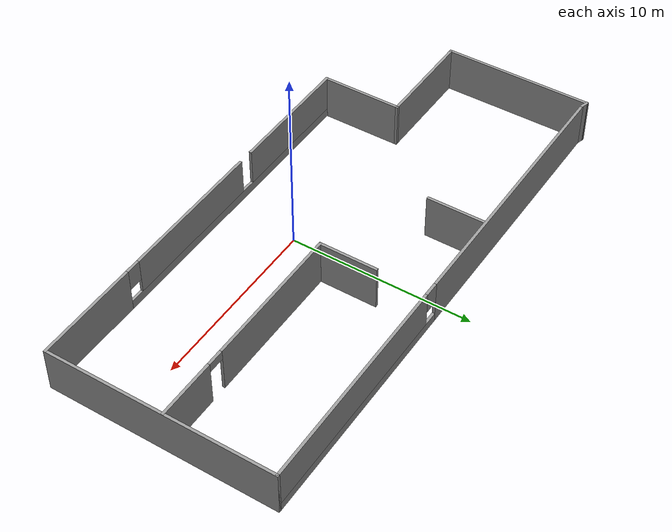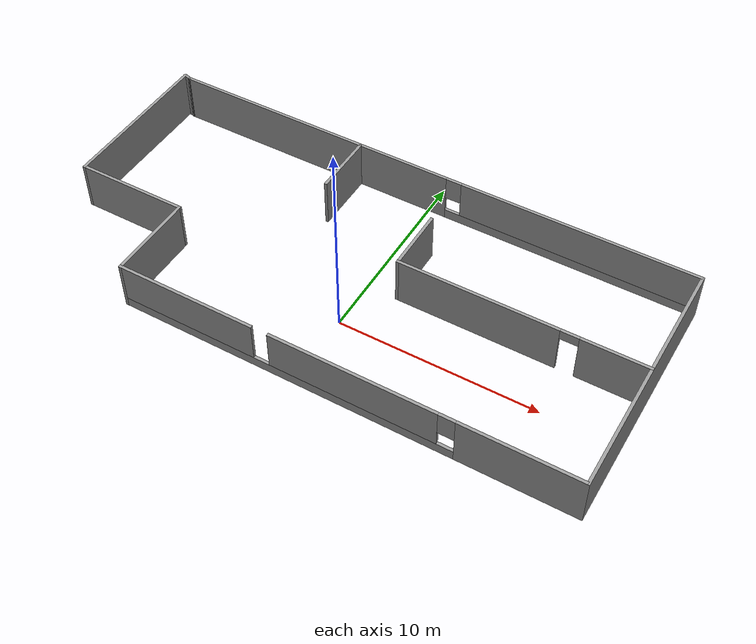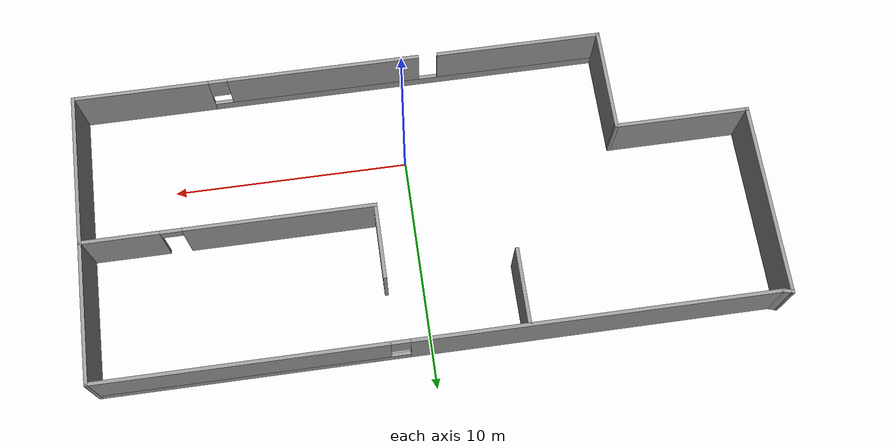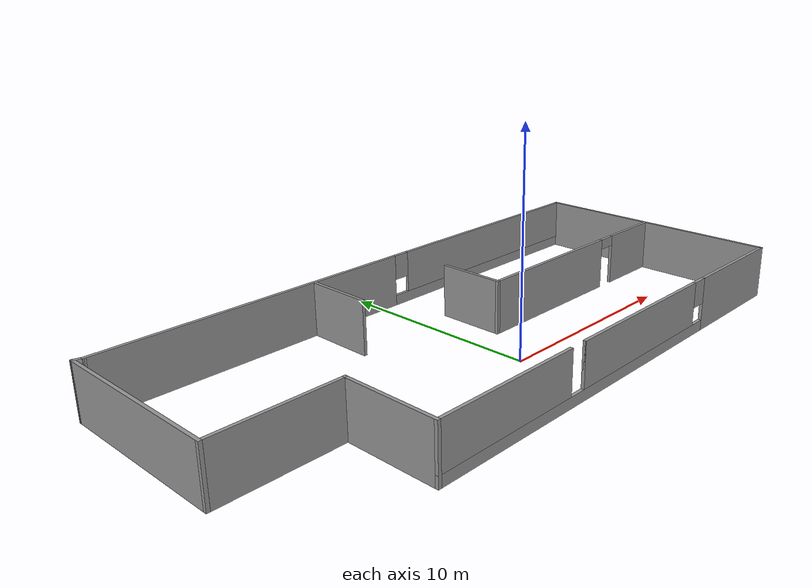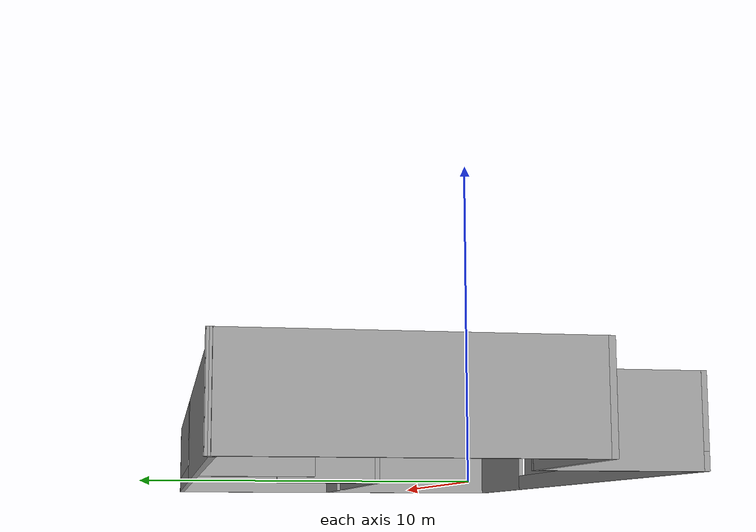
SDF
<?xml version='1.0'?>
<sdf version='1.7'>
  <model name='autolab_building'>
    <pose>-0.449201 2.35064 0 0 -0 0</pose>
    <link name='Wall_10'>
      <collision name='Wall_10_Collision'>
        <geometry>
          <box>
            <size>3.25 0.15 2.5</size>
          </box>
        </geometry>
        <pose>0 0 1.25 0 -0 0</pose>
      </collision>
      <visual name='Wall_10_Visual'>
        <pose>0 0 1.25 0 -0 0</pose>
        <geometry>
          <box>
            <size>3.25 0.15 2.5</size>
          </box>
        </geometry>
        <material>
          <script>
            <uri>file://media/materials/scripts/gazebo.material</uri>
            <name>Gazebo/Grey</name>
          </script>
          <ambient>1 1 1 1</ambient>
        </material>
        <meta>
          <layer>0</layer>
        </meta>
      </visual>
      <pose>-3.45797 4.50199 0 0 -0 1.5708</pose>
    </link>
    <link name='Wall_13'>
      <pose>8.04816 0.245706 0 0 -0 3.14159</pose>
      <visual name='Wall_13_Visual_0'>
        <pose>-4.46205 0 1.25 0 -0 0</pose>
        <geometry>
          <box>
            <size>3.3259 0.15 2.5</size>
          </box>
        </geometry>
        <material>
          <script>
            <uri>file://media/materials/scripts/gazebo.material</uri>
            <name>Gazebo/Grey</name>
          </script>
          <ambient>1 1 1 1</ambient>
        </material>
        <meta>
          <layer>0</layer>
        </meta>
      </visual>
      <collision name='Wall_13_Collision_0'>
        <geometry>
          <box>
            <size>3.3259 0.15 2.5</size>
          </box>
        </geometry>
        <pose>-4.46205 0 1.25 0 -0 0</pose>
      </collision>
      <visual name='Wall_13_Visual_1'>
        <pose>2.11295 0 1.25 0 -0 0</pose>
        <geometry>
          <box>
            <size>8.0241 0.15 2.5</size>
          </box>
        </geometry>
        <material>
          <script>
            <uri>file://media/materials/scripts/gazebo.material</uri>
            <name>Gazebo/Grey</name>
          </script>
          <ambient>1 1 1 1</ambient>
        </material>
        <meta>
          <layer>0</layer>
        </meta>
      </visual>
      <collision name='Wall_13_Collision_1'>
        <geometry>
          <box>
            <size>8.0241 0.15 2.5</size>
          </box>
        </geometry>
        <pose>2.11295 0 1.25 0 -0 0</pose>
      </collision>
      <visual name='Wall_13_Visual_2'>
        <pose>-2.3491 0 2.25 0 -0 0</pose>
        <geometry>
          <box>
            <size>0.9 0.15 0.5</size>
          </box>
        </geometry>
        <material>
          <script>
            <uri>file://media/materials/scripts/gazebo.material</uri>
            <name>Gazebo/Grey</name>
          </script>
          <ambient>1 1 1 1</ambient>
        </material>
        <meta>
          <layer>0</layer>
        </meta>
      </visual>
      <collision name='Wall_13_Collision_2'>
        <geometry>
          <box>
            <size>0.9 0.15 0.5</size>
          </box>
        </geometry>
        <pose>-2.3491 0 2.25 0 -0 0</pose>
      </collision>
    </link>
    <link name='Wall_14'>
      <collision name='Wall_14_Collision'>
        <geometry>
          <box>
            <size>3.25 0.15 2.5</size>
          </box>
        </geometry>
        <pose>0 0 1.25 0 -0 0</pose>
      </collision>
      <visual name='Wall_14_Visual'>
        <pose>0 0 1.25 0 -0 0</pose>
        <geometry>
          <box>
            <size>3.25 0.15 2.5</size>
          </box>
        </geometry>
        <material>
          <script>
            <uri>file://media/materials/scripts/gazebo.material</uri>
            <name>Gazebo/Grey</name>
          </script>
          <ambient>1 1 1 1</ambient>
        </material>
        <meta>
          <layer>0</layer>
        </meta>
      </visual>
      <pose>1.99816 1.79571 0 0 -0 1.5708</pose>
    </link>
    <link name='Wall_2'>
      <pose>0.183859 6.11614 0 0 -0 0</pose>
      <visual name='Wall_2_Visual_0'>
        <pose>-6.43029 0 1.25 0 -0 0</pose>
        <geometry>
          <box>
            <size>15.1394 0.15 2.5</size>
          </box>
        </geometry>
        <material>
          <script>
            <uri>file://media/materials/scripts/gazebo.material</uri>
            <name>Gazebo/Grey</name>
          </script>
          <ambient>1 1 1 1</ambient>
        </material>
        <meta>
          <layer>0</layer>
        </meta>
      </visual>
      <collision name='Wall_2_Collision_0'>
        <geometry>
          <box>
            <size>15.1394 0.15 2.5</size>
          </box>
        </geometry>
        <pose>-6.43029 0 1.25 0 -0 0</pose>
      </collision>
      <visual name='Wall_2_Visual_1'>
        <pose>7.56971 0 0.25 0 -0 0</pose>
        <geometry>
          <box>
            <size>12.8606 0.15 0.5</size>
          </box>
        </geometry>
        <material>
          <script>
            <uri>file://media/materials/scripts/gazebo.material</uri>
            <name>Gazebo/Grey</name>
          </script>
          <ambient>1 1 1 1</ambient>
        </material>
        <meta>
          <layer>0</layer>
        </meta>
      </visual>
      <collision name='Wall_2_Collision_1'>
        <geometry>
          <box>
            <size>12.8606 0.15 0.5</size>
          </box>
        </geometry>
        <pose>7.56971 0 0.25 0 -0 0</pose>
      </collision>
      <visual name='Wall_2_Visual_2'>
        <pose>7.96971 0 1.5 0 -0 0</pose>
        <geometry>
          <box>
            <size>12.0606 0.15 2</size>
          </box>
        </geometry>
        <material>
          <script>
            <uri>file://media/materials/scripts/gazebo.material</uri>
            <name>Gazebo/Grey</name>
          </script>
          <ambient>1 1 1 1</ambient>
        </material>
        <meta>
          <layer>0</layer>
        </meta>
      </visual>
      <collision name='Wall_2_Collision_2'>
        <geometry>
          <box>
            <size>12.0606 0.15 2</size>
          </box>
        </geometry>
        <pose>7.96971 0 1.5 0 -0 0</pose>
      </collision>
      <visual name='Wall_2_Visual_3'>
        <pose>1.53943 0 1.9 0 -0 0</pose>
        <geometry>
          <box>
            <size>0.8 0.15 1.2</size>
          </box>
        </geometry>
        <material>
          <script>
            <uri>file://media/materials/scripts/gazebo.material</uri>
            <name>Gazebo/Grey</name>
          </script>
          <ambient>1 1 1 1</ambient>
        </material>
        <meta>
          <layer>0</layer>
        </meta>
      </visual>
      <collision name='Wall_2_Collision_3'>
        <geometry>
          <box>
            <size>0.8 0.15 1.2</size>
          </box>
        </geometry>
        <pose>1.53943 0 1.9 0 -0 0</pose>
      </collision>
    </link>
    <link name='Wall_3'>
      <collision name='Wall_3_Collision'>
        <geometry>
          <box>
            <size>12.5 0.15 2.5</size>
          </box>
        </geometry>
        <pose>0 0 1.25 0 -0 0</pose>
      </collision>
      <visual name='Wall_3_Visual'>
        <pose>0 0 1.25 0 -0 0</pose>
        <geometry>
          <box>
            <size>12.5 0.15 2.5</size>
          </box>
        </geometry>
        <material>
          <script>
            <uri>file://media/materials/scripts/gazebo.material</uri>
            <name>Gazebo/Grey</name>
          </script>
          <ambient>1 1 1 1</ambient>
        </material>
        <meta>
          <layer>0</layer>
        </meta>
      </visual>
      <pose>14.1089 -0.058858 0 0 -0 -1.5708</pose>
    </link>
    <link name='Wall_4'>
      <pose>2.80886 -6.23386 0 0 -0 3.14159</pose>
      <visual name='Wall_4_Visual_0'>
        <pose>-8.46734 0 1.25 0 -0 0</pose>
        <geometry>
          <box>
            <size>5.81531 0.15 2.5</size>
          </box>
        </geometry>
        <material>
          <script>
            <uri>file://media/materials/scripts/gazebo.material</uri>
            <name>Gazebo/Grey</name>
          </script>
          <ambient>1 1 1 1</ambient>
        </material>
        <meta>
          <layer>0</layer>
        </meta>
      </visual>
      <collision name='Wall_4_Collision_0'>
        <geometry>
          <box>
            <size>5.81531 0.15 2.5</size>
          </box>
        </geometry>
        <pose>-8.46734 0 1.25 0 -0 0</pose>
      </collision>
      <visual name='Wall_4_Visual_1'>
        <pose>2.90766 0 0.25 0 -0 0</pose>
        <geometry>
          <box>
            <size>16.9347 0.15 0.5</size>
          </box>
        </geometry>
        <material>
          <script>
            <uri>file://media/materials/scripts/gazebo.material</uri>
            <name>Gazebo/Grey</name>
          </script>
          <ambient>1 1 1 1</ambient>
        </material>
        <meta>
          <layer>0</layer>
        </meta>
      </visual>
      <collision name='Wall_4_Collision_1'>
        <geometry>
          <box>
            <size>16.9347 0.15 0.5</size>
          </box>
        </geometry>
        <pose>2.90766 0 0.25 0 -0 0</pose>
      </collision>
      <visual name='Wall_4_Visual_2'>
        <pose>-0.637656 0 1.5 0 -0 0</pose>
        <geometry>
          <box>
            <size>8.24407 0.15 2</size>
          </box>
        </geometry>
        <material>
          <script>
            <uri>file://media/materials/scripts/gazebo.material</uri>
            <name>Gazebo/Grey</name>
          </script>
          <ambient>1 1 1 1</ambient>
        </material>
        <meta>
          <layer>0</layer>
        </meta>
      </visual>
      <collision name='Wall_4_Collision_2'>
        <geometry>
          <box>
            <size>8.24407 0.15 2</size>
          </box>
        </geometry>
        <pose>-0.637656 0 1.5 0 -0 0</pose>
      </collision>
      <visual name='Wall_4_Visual_3'>
        <pose>7.82969 0 1.5 0 -0 0</pose>
        <geometry>
          <box>
            <size>7.09062 0.15 2</size>
          </box>
        </geometry>
        <material>
          <script>
            <uri>file://media/materials/scripts/gazebo.material</uri>
            <name>Gazebo/Grey</name>
          </script>
          <ambient>1 1 1 1</ambient>
        </material>
        <meta>
          <layer>0</layer>
        </meta>
      </visual>
      <collision name='Wall_4_Collision_3'>
        <geometry>
          <box>
            <size>7.09062 0.15 2</size>
          </box>
        </geometry>
        <pose>7.82969 0 1.5 0 -0 0</pose>
      </collision>
      <visual name='Wall_4_Visual_4'>
        <pose>-5.15969 0 1.9 0 -0 0</pose>
        <geometry>
          <box>
            <size>0.8 0.15 1.2</size>
          </box>
        </geometry>
        <material>
          <script>
            <uri>file://media/materials/scripts/gazebo.material</uri>
            <name>Gazebo/Grey</name>
          </script>
          <ambient>1 1 1 1</ambient>
        </material>
        <meta>
          <layer>0</layer>
        </meta>
      </visual>
      <collision name='Wall_4_Collision_4'>
        <geometry>
          <box>
            <size>0.8 0.15 1.2</size>
          </box>
        </geometry>
        <pose>-5.15969 0 1.9 0 -0 0</pose>
      </collision>
      <visual name='Wall_4_Visual_5'>
        <pose>3.48438 0 1.9 0 -0 0</pose>
        <geometry>
          <box>
            <size>0 0.15 1.2</size>
          </box>
        </geometry>
        <material>
          <script>
            <uri>file://media/materials/scripts/gazebo.material</uri>
            <name>Gazebo/Grey</name>
          </script>
          <ambient>1 1 1 1</ambient>
        </material>
        <meta>
          <layer>0</layer>
        </meta>
      </visual>
      <collision name='Wall_4_Collision_5'>
        <geometry>
          <box>
            <size>0 0.15 1.2</size>
          </box>
        </geometry>
        <pose>3.48438 0 1.9 0 -0 0</pose>
      </collision>
    </link>
    <link name='Wall_5'>
      <collision name='Wall_5_Collision'>
        <geometry>
          <box>
            <size>4.5 0.15 2.5</size>
          </box>
        </geometry>
        <pose>0 0 1.25 0 -0 0</pose>
      </collision>
      <visual name='Wall_5_Visual'>
        <pose>0 0 1.25 0 -0 0</pose>
        <geometry>
          <box>
            <size>4.5 0.15 2.5</size>
          </box>
        </geometry>
        <material>
          <script>
            <uri>file://media/materials/scripts/gazebo.material</uri>
            <name>Gazebo/Grey</name>
          </script>
          <ambient>1 1 1 1</ambient>
        </material>
        <meta>
          <layer>0</layer>
        </meta>
      </visual>
      <pose>-8.49114 -4.05886 0 0 -0 1.5708</pose>
    </link>
    <link name='Wall_6'>
      <collision name='Wall_6_Collision'>
        <geometry>
          <box>
            <size>5.75 0.15 2.5</size>
          </box>
        </geometry>
        <pose>0 0 1.25 0 -0 0</pose>
      </collision>
      <visual name='Wall_6_Visual'>
        <pose>0 0 1.25 0 -0 0</pose>
        <geometry>
          <box>
            <size>5.75 0.15 2.5</size>
          </box>
        </geometry>
        <material>
          <script>
            <uri>file://media/materials/scripts/gazebo.material</uri>
            <name>Gazebo/Grey</name>
          </script>
          <ambient>1 1 1 1</ambient>
        </material>
        <meta>
          <layer>0</layer>
        </meta>
      </visual>
      <pose>-11.2911 -1.88386 0 0 -0 3.14159</pose>
    </link>
    <link name='Wall_7'>
      <collision name='Wall_7_Collision'>
        <geometry>
          <box>
            <size>8.25 0.15 2.5</size>
          </box>
        </geometry>
        <pose>0 0 1.25 0 -0 0</pose>
      </collision>
      <visual name='Wall_7_Visual'>
        <pose>0 0 1.25 0 -0 0</pose>
        <geometry>
          <box>
            <size>8.25 0.15 2.5</size>
          </box>
        </geometry>
        <material>
          <script>
            <uri>file://media/materials/scripts/gazebo.material</uri>
            <name>Gazebo/Grey</name>
          </script>
          <ambient>1 1 1 1</ambient>
        </material>
        <meta>
          <layer>0</layer>
        </meta>
      </visual>
      <pose>-14.0911 2.16614 0 0 -0 1.5708</pose>
    </link>
    <link name='Wall_8'>
      <collision name='Wall_8_Collision'>
        <geometry>
          <box>
            <size>0.514005 0.15 2.5</size>
          </box>
        </geometry>
        <pose>0 0 1.25 0 -0 0</pose>
      </collision>
      <visual name='Wall_8_Visual'>
        <pose>0 0 1.25 0 -0 0</pose>
        <geometry>
          <box>
            <size>0.514005 0.15 2.5</size>
          </box>
        </geometry>
        <material>
          <script>
            <uri>file://media/materials/scripts/gazebo.material</uri>
            <name>Gazebo/Grey</name>
          </script>
          <ambient>1 1 1 1</ambient>
        </material>
        <meta>
          <layer>0</layer>
        </meta>
      </visual>
      <pose>-13.9161 6.16614 0 0 -0 -0.2783</pose>
    </link>
    <static>1</static>
  </model>
</sdf>
